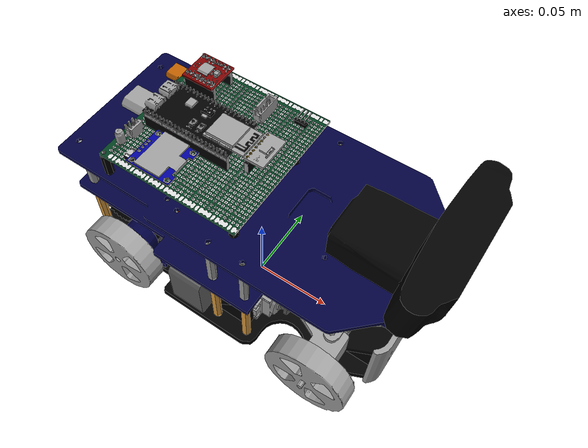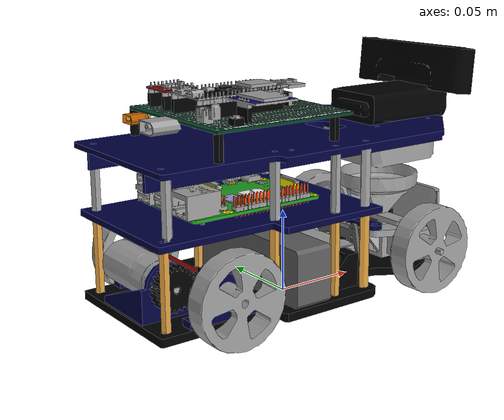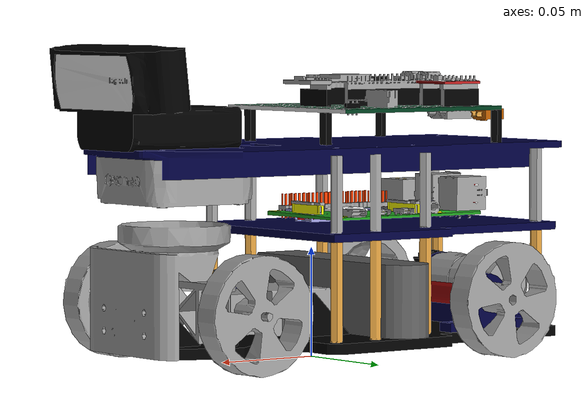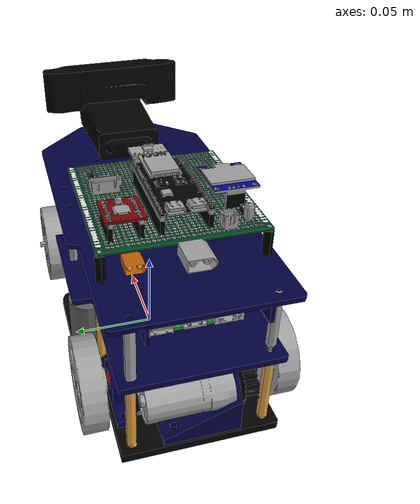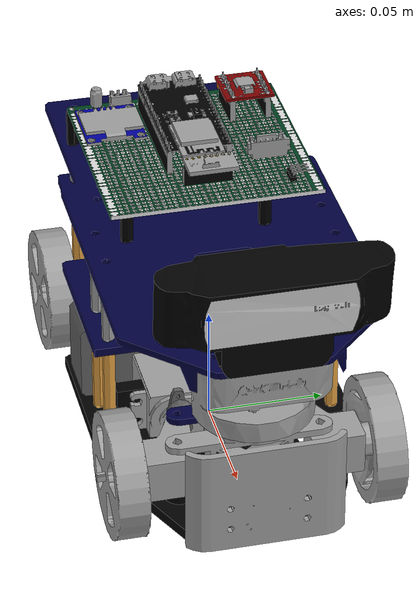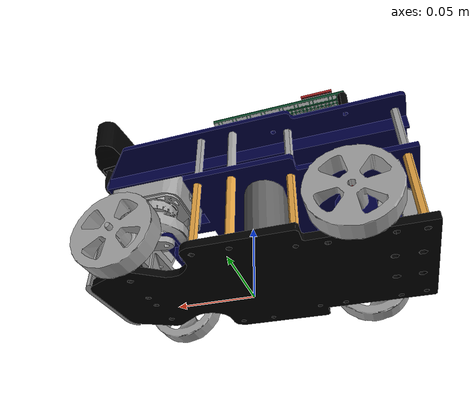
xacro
<?xml version="1.0"?>
<robot xmlns:xacro="http://www.ros.org/wiki/xacro" name="goruBot">

    <xacro:include filename="cad_generated.xacro" />

    <xacro:property name="steer_stop_inner" value="${radians(39.0)}" />
    <xacro:property name="steer_stop_outer" value="${radians(31.0)}" />

    <xacro:property name="camera_pitch" value="0.0" />

    <!-- control.xacro first: it holds the motor's friction, which the axle joint uses. -->
    <xacro:include filename="control.xacro" />
    <xacro:include filename="goruBotCore.xacro" />
    <xacro:include filename="lidar.xacro" />
    <xacro:include filename="IMU.xacro" />
    <xacro:include filename="camera.xacro" />
    <xacro:include filename="gazebo.xacro" />

</robot>

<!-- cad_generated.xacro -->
<!-- GENERATED by gorusim/tools/extract_cad.py from CAD/WRO_Bot_v2.step.
     Do not edit by hand: re-run the tool. -->
<robot xmlns:xacro="http://www.ros.org/wiki/xacro" name="goruBot">
    <xacro:property name="wheel_radius" value="0.0265" />
    <xacro:property name="rear_wheel_radius" value="0.0265" />
    <xacro:property name="front_tread" value="0.012" />
    <xacro:property name="rear_tread" value="0.012" />
    <xacro:property name="rear_wheel_offset" value="0.0535" />
    <xacro:property name="base_link_xyz" value="0 0 0" />
    <xacro:property name="rear_axle_xyz" value="-0.07 0 0.0265" />
    <xacro:property name="front_left_knuckle_xyz" value="0.07 0.029747 0.0265" />
    <xacro:property name="front_right_knuckle_xyz" value="0.07 -0.029747 0.0265" />
    <xacro:property name="front_left_wheel_xyz" value="0.07 0.0535 0.0265" />
    <xacro:property name="front_right_wheel_xyz" value="0.07 -0.0535 0.0265" />
    <xacro:property name="laser_xyz" value="0.076013 0 0.06825" />
    <xacro:property name="camera_link_xyz" value="0.119915 -0.000034 0.127429" />
    <xacro:property name="imu_link_xyz" value="0.00225 0.000124 0.126525" />
    <xacro:property name="front_left_wheel_joint_xyz" value="0 0.023753 0" />
    <xacro:property name="front_right_wheel_joint_xyz" value="0 -0.023753 0" />
    <xacro:property name="lidar_radius" value="0.0278" />
    <xacro:property name="lidar_body_length" value="0.0413" />
    <xacro:property name="lidar_body_center_z" value="0.0049" />
    <xacro:property name="camera_box_size" value="0.026173 0.094083 0.029496" />
    <xacro:property name="camera_box_xyz" value="-0.012452 0.000064 0.001045" />
    <xacro:macro name="base_link_cad">
        <visual>
            <geometry>
                <mesh filename="package://gorusim/meshes/base_link__000.stl" />
            </geometry>
            <material name="cad_base_link__000">
                <color rgba="0 0 0 1" />
            </material>
        </visual>
        <visual>
            <geometry>
                <mesh filename="package://gorusim/meshes/base_link__002.stl" />
            </geometry>
            <material name="cad_base_link__002">
                <color rgba="0 0 0.25 1" />
            </material>
        </visual>
        <visual>
            <geometry>
                <mesh filename="package://gorusim/meshes/base_link__005.stl" />
            </geometry>
            <material name="cad_base_link__005">
                <color rgba="0 0 0.625 1" />
            </material>
        </visual>
        <visual>
            <geometry>
                <mesh filename="package://gorusim/meshes/base_link__021.stl" />
            </geometry>
            <material name="cad_base_link__021">
                <color rgba="0 0.25 0.125 1" />
            </material>
        </visual>
        <visual>
            <geometry>
                <mesh filename="package://gorusim/meshes/base_link__024.stl" />
            </geometry>
            <material name="cad_base_link__024">
                <color rgba="0 0.25 0.5 1" />
            </material>
        </visual>
        <visual>
            <geometry>
                <mesh filename="package://gorusim/meshes/base_link__111.stl" />
            </geometry>
            <material name="cad_base_link__111">
                <color rgba="0.125 0.125 0.125 1" />
            </material>
        </visual>
        <visual>
            <geometry>
                <mesh filename="package://gorusim/meshes/base_link__151.stl" />
            </geometry>
            <material name="cad_base_link__151">
                <color rgba="0.125 0.625 0.125 1" />
            </material>
        </visual>
        <visual>
            <geometry>
                <mesh filename="package://gorusim/meshes/base_link__211.stl" />
            </geometry>
            <material name="cad_base_link__211">
                <color rgba="0.25 0.125 0.125 1" />
            </material>
        </visual>
        <visual>
            <geometry>
                <mesh filename="package://gorusim/meshes/base_link__222.stl" />
            </geometry>
            <material name="cad_base_link__222">
                <color rgba="0.25 0.25 0.25 1" />
            </material>
        </visual>
        <visual>
            <geometry>
                <mesh filename="package://gorusim/meshes/base_link__333.stl" />
            </geometry>
            <material name="cad_base_link__333">
                <color rgba="0.375 0.375 0.375 1" />
            </material>
        </visual>
        <visual>
            <geometry>
                <mesh filename="package://gorusim/meshes/base_link__400.stl" />
            </geometry>
            <material name="cad_base_link__400">
                <color rgba="0.5 0 0 1" />
            </material>
        </visual>
        <visual>
            <geometry>
                <mesh filename="package://gorusim/meshes/base_link__444.stl" />
            </geometry>
            <material name="cad_base_link__444">
                <color rgba="0.5 0.5 0.5 1" />
            </material>
        </visual>
        <visual>
            <geometry>
                <mesh filename="package://gorusim/meshes/base_link__555.stl" />
            </geometry>
            <material name="cad_base_link__555">
                <color rgba="0.625 0.625 0.625 1" />
            </material>
        </visual>
        <visual>
            <geometry>
                <mesh filename="package://gorusim/meshes/base_link__557.stl" />
            </geometry>
            <material name="cad_base_link__557">
                <color rgba="0.625 0.625 0.875 1" />
            </material>
        </visual>
        <visual>
            <geometry>
                <mesh filename="package://gorusim/meshes/base_link__611.stl" />
            </geometry>
            <material name="cad_base_link__611">
                <color rgba="0.75 0.125 0.125 1" />
            </material>
        </visual>
        <visual>
            <geometry>
                <mesh filename="package://gorusim/meshes/base_link__630.stl" />
            </geometry>
            <material name="cad_base_link__630">
                <color rgba="0.75 0.375 0 1" />
            </material>
        </visual>
        <visual>
            <geometry>
                <mesh filename="package://gorusim/meshes/base_link__666.stl" />
            </geometry>
            <material name="cad_base_link__666">
                <color rgba="0.75 0.75 0.75 1" />
            </material>
        </visual>
        <visual>
            <geometry>
                <mesh filename="package://gorusim/meshes/base_link__700.stl" />
            </geometry>
            <material name="cad_base_link__700">
                <color rgba="0.875 0 0 1" />
            </material>
        </visual>
        <visual>
            <geometry>
                <mesh filename="package://gorusim/meshes/base_link__752.stl" />
            </geometry>
            <material name="cad_base_link__752">
                <color rgba="0.875 0.625 0.25 1" />
            </material>
        </visual>
        <visual>
            <geometry>
                <mesh filename="package://gorusim/meshes/base_link__763.stl" />
            </geometry>
            <material name="cad_base_link__763">
                <color rgba="0.875 0.75 0.375 1" />
            </material>
        </visual>
        <visual>
            <geometry>
                <mesh filename="package://gorusim/meshes/base_link__777.stl" />
            </geometry>
            <material name="cad_base_link__777">
                <color rgba="0.875 0.875 0.875 1" />
            </material>
        </visual>
        <visual>
            <geometry>
                <mesh filename="package://gorusim/meshes/base_link__800.stl" />
            </geometry>
            <material name="cad_base_link__800">
                <color rgba="1 0 0 1" />
            </material>
        </visual>
        <visual>
            <geometry>
                <mesh filename="package://gorusim/meshes/base_link__820.stl" />
            </geometry>
            <material name="cad_base_link__820">
                <color rgba="1 0.25 0 1" />
            </material>
        </visual>
        <visual>
            <geometry>
                <mesh filename="package://gorusim/meshes/base_link__880.stl" />
            </geometry>
            <material name="cad_base_link__880">
                <color rgba="1 1 0 1" />
            </material>
        </visual>
        <visual>
            <geometry>
                <mesh filename="package://gorusim/meshes/base_link__888.stl" />
            </geometry>
            <material name="cad_base_link__888">
                <color rgba="1 1 1 1" />
            </material>
        </visual>
        <inertial>
            <origin xyz="-0.025829 -0.000917 0.044631" />
            <mass value="0.796792" />
            <inertia ixx="1.462060e-03" ixy="4.466321e-05" ixz="2.322719e-05" iyy="2.776908e-03" iyz="-1.021151e-05" izz="2.650289e-03" />
        </inertial>
    </xacro:macro>
    <xacro:macro name="rear_axle_cad">
        <visual>
            <geometry>
                <mesh filename="package://gorusim/meshes/rear_axle__000.stl" />
            </geometry>
            <material name="cad_rear_axle__000">
                <color rgba="0 0 0 1" />
            </material>
        </visual>
        <visual>
            <geometry>
                <mesh filename="package://gorusim/meshes/rear_axle__400.stl" />
            </geometry>
            <material name="cad_rear_axle__400">
                <color rgba="0.5 0 0 1" />
            </material>
        </visual>
        <visual>
            <geometry>
                <mesh filename="package://gorusim/meshes/rear_axle__555.stl" />
            </geometry>
            <material name="cad_rear_axle__555">
                <color rgba="0.625 0.625 0.625 1" />
            </material>
        </visual>
        <inertial>
            <origin xyz="-0 0.000165 0" />
            <mass value="0.08217" />
            <inertia ixx="1.550877e-04" ixy="-4.077883e-12" ixz="-6.324603e-13" iyy="1.126836e-04" iyz="-2.323920e-12" izz="1.551082e-04" />
        </inertial>
    </xacro:macro>
    <xacro:macro name="front_left_knuckle_cad">
        <visual>
            <geometry>
                <mesh filename="package://gorusim/meshes/front_left_knuckle__555.stl" />
            </geometry>
            <material name="cad_front_left_knuckle__555">
                <color rgba="0.625 0.625 0.625 1" />
            </material>
        </visual>
        <visual>
            <geometry>
                <mesh filename="package://gorusim/meshes/front_left_knuckle__666.stl" />
            </geometry>
            <material name="cad_front_left_knuckle__666">
                <color rgba="0.75 0.75 0.75 1" />
            </material>
        </visual>
        <inertial>
            <origin xyz="-0.000918 0.00832 0.000474" />
            <mass value="0.010712" />
            <inertia ixx="8.446107e-07" ixy="-1.100378e-07" ixz="6.439038e-08" iyy="6.613982e-07" iyz="5.687453e-08" izz="9.637197e-07" />
        </inertial>
    </xacro:macro>
    <xacro:macro name="front_right_knuckle_cad">
        <visual>
            <geometry>
                <mesh filename="package://gorusim/meshes/front_right_knuckle__555.stl" />
            </geometry>
            <material name="cad_front_right_knuckle__555">
                <color rgba="0.625 0.625 0.625 1" />
            </material>
        </visual>
        <visual>
            <geometry>
                <mesh filename="package://gorusim/meshes/front_right_knuckle__666.stl" />
            </geometry>
            <material name="cad_front_right_knuckle__666">
                <color rgba="0.75 0.75 0.75 1" />
            </material>
        </visual>
        <inertial>
            <origin xyz="-0.000949 -0.008528 0.00049" />
            <mass value="0.01036" />
            <inertia ixx="8.223531e-07" ixy="1.120836e-07" ixz="6.423200e-08" iyy="6.554374e-07" iyz="-5.793101e-08" izz="9.409222e-07" />
        </inertial>
    </xacro:macro>
    <xacro:macro name="front_left_wheel_cad">
        <visual>
            <geometry>
                <mesh filename="package://gorusim/meshes/front_left_wheel__555.stl" />
            </geometry>
            <material name="cad_front_left_wheel__555">
                <color rgba="0.625 0.625 0.625 1" />
            </material>
        </visual>
        <inertial>
            <origin xyz="0 0.000589 0" />
            <mass value="0.019586" />
            <inertia ixx="4.440116e-06" ixy="4.848212e-16" ixz="-1.621630e-16" iyy="8.362235e-06" iyz="-1.255838e-15" izz="4.440116e-06" />
        </inertial>
    </xacro:macro>
    <xacro:macro name="front_right_wheel_cad">
        <visual>
            <geometry>
                <mesh filename="package://gorusim/meshes/front_right_wheel__555.stl" />
            </geometry>
            <material name="cad_front_right_wheel__555">
                <color rgba="0.625 0.625 0.625 1" />
            </material>
        </visual>
        <inertial>
            <origin xyz="0 -0.000589 0" />
            <mass value="0.019586" />
            <inertia ixx="4.440116e-06" ixy="-4.847392e-16" ixz="-1.621671e-16" iyy="8.362235e-06" iyz="1.255850e-15" izz="4.440116e-06" />
        </inertial>
    </xacro:macro>
    <xacro:macro name="laser_cad">
        <visual>
            <geometry>
                <mesh filename="package://gorusim/meshes/laser__334.stl" />
            </geometry>
            <material name="cad_laser__334">
                <color rgba="0.375 0.375 0.5 1" />
            </material>
        </visual>
        <visual>
            <geometry>
                <mesh filename="package://gorusim/meshes/laser__555.stl" />
            </geometry>
            <material name="cad_laser__555">
                <color rgba="0.625 0.625 0.625 1" />
            </material>
        </visual>
        <inertial>
            <origin xyz="0.000082 0.000095 0.011555" />
            <mass value="0.11" />
            <inertia ixx="4.817472e-05" ixy="6.971116e-09" ixz="-7.497358e-08" iyy="4.802555e-05" iyz="-5.650924e-08" izz="6.794310e-05" />
        </inertial>
    </xacro:macro>
    <xacro:macro name="camera_link_cad">
        <visual>
            <geometry>
                <mesh filename="package://gorusim/meshes/camera_link__000.stl" />
            </geometry>
            <material name="cad_camera_link__000">
                <color rgba="0 0 0 1" />
            </material>
        </visual>
        <visual>
            <geometry>
                <mesh filename="package://gorusim/meshes/camera_link__333.stl" />
            </geometry>
            <material name="cad_camera_link__333">
                <color rgba="0.375 0.375 0.375 1" />
            </material>
        </visual>
        <visual>
            <geometry>
                <mesh filename="package://gorusim/meshes/camera_link__444.stl" />
            </geometry>
            <material name="cad_camera_link__444">
                <color rgba="0.5 0.5 0.5 1" />
            </material>
        </visual>
        <visual>
            <geometry>
                <mesh filename="package://gorusim/meshes/camera_link__777.stl" />
            </geometry>
            <material name="cad_camera_link__777">
                <color rgba="0.875 0.875 0.875 1" />
            </material>
        </visual>
        <inertial>
            <origin xyz="-0.024503 0.000049 -0.008835" />
            <mass value="0.162" />
            <inertia ixx="9.345157e-05" ixy="-3.526956e-08" ixz="-2.180396e-05" iyy="7.730485e-05" iyz="1.823723e-07" izz="1.163682e-04" />
        </inertial>
    </xacro:macro>
    <xacro:macro name="imu_link_cad">
        <visual>
            <geometry>
                <mesh filename="package://gorusim/meshes/imu_link__222.stl" />
            </geometry>
            <material name="cad_imu_link__222">
                <color rgba="0.25 0.25 0.25 1" />
            </material>
        </visual>
        <visual>
            <geometry>
                <mesh filename="package://gorusim/meshes/imu_link__444.stl" />
            </geometry>
            <material name="cad_imu_link__444">
                <color rgba="0.5 0.5 0.5 1" />
            </material>
        </visual>
        <visual>
            <geometry>
                <mesh filename="package://gorusim/meshes/imu_link__541.stl" />
            </geometry>
            <material name="cad_imu_link__541">
                <color rgba="0.625 0.5 0.125 1" />
            </material>
        </visual>
        <visual>
            <geometry>
                <mesh filename="package://gorusim/meshes/imu_link__555.stl" />
            </geometry>
            <material name="cad_imu_link__555">
                <color rgba="0.625 0.625 0.625 1" />
            </material>
        </visual>
        <visual>
            <geometry>
                <mesh filename="package://gorusim/meshes/imu_link__888.stl" />
            </geometry>
            <material name="cad_imu_link__888">
                <color rgba="1 1 1 1" />
            </material>
        </visual>
        <inertial>
            <origin xyz="0.000257 0.000083 -0.000468" />
            <mass value="0.000747" />
            <inertia ixx="2.608301e-08" ixy="8.202680e-11" ixz="-1.117803e-10" iyy="8.539946e-09" iyz="-8.365215e-11" izz="3.397854e-08" />
        </inertial>
    </xacro:macro>
</robot>

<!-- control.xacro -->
<robot xmlns:xacro="http://www.ros.org/wiki/xacro" name="goruBot">

    <xacro:property name="motor_stall_torque" value="0.20" />
    <xacro:property name="motor_no_load_speed" value="98.3" />
    <xacro:property name="axle_friction" value="0.03" />
    <xacro:property name="axle_damping" value="0.00002" />

    <gazebo>
        <plugin filename="ignition-gazebo-joint-controller-system"
                name="ignition::gazebo::systems::JointController">
            <joint_name>rear_axle_joint</joint_name>
            <topic>/gorubot/motor_target</topic>
            <use_force_commands>true</use_force_commands>
            <p_gain>${motor_stall_torque / motor_no_load_speed}</p_gain>
            <i_gain>0.0</i_gain>
            <d_gain>0.0</d_gain>
            <cmd_max>${motor_stall_torque}</cmd_max>
            <cmd_min>${-motor_stall_torque}</cmd_min>
        </plugin>
    </gazebo>

    <xacro:macro name="steer_controller" params="joint topic">
        <gazebo>
            <plugin filename="ignition-gazebo-joint-position-controller-system"
                    name="ignition::gazebo::systems::JointPositionController">
                <joint_name>${joint}</joint_name>
                <topic>${topic}</topic>
                <p_gain>6.0</p_gain>
                <i_gain>3.0</i_gain>
                <d_gain>0.02</d_gain>
                <i_max>0.5</i_max>
                <i_min>-0.5</i_min>
                <cmd_max>1.0</cmd_max>
                <cmd_min>-1.0</cmd_min>
            </plugin>
        </gazebo>
    </xacro:macro>

    <xacro:steer_controller joint="front_left_kingpin" topic="/gorubot/steer_left" />
    <xacro:steer_controller joint="front_right_kingpin" topic="/gorubot/steer_right" />

    <gazebo>
        <plugin filename="ignition-gazebo-joint-state-publisher-system"
                name="ignition::gazebo::systems::JointStatePublisher">
            <topic>/gorubot/joint_states</topic>
            <joint_name>rear_axle_joint</joint_name>
            <joint_name>front_left_kingpin</joint_name>
            <joint_name>front_right_kingpin</joint_name>
            <joint_name>front_left_wheel_joint</joint_name>
            <joint_name>front_right_wheel_joint</joint_name>
        </plugin>
    </gazebo>

    <gazebo>
        <plugin filename="ignition-gazebo-odometry-publisher-system"
                name="ignition::gazebo::systems::OdometryPublisher">
            <odom_frame>odom</odom_frame>
            <robot_base_frame>base_link</robot_base_frame>
            <odom_topic>/gorubot/ground_truth</odom_topic>
            <tf_topic>/gorubot/ground_truth_tf</tf_topic>
            <odom_publish_frequency>50</odom_publish_frequency>
            <dimensions>2</dimensions>
        </plugin>
    </gazebo>

</robot>

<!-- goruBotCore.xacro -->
<robot xmlns:xacro="http://www.ros.org/wiki/xacro" name="goruBot">

    <xacro:macro name="box_collision" params="xmin xmax half_y zmin zmax">
        <collision>
            <origin xyz="${(xmin + xmax) / 2.0} 0 ${(zmin + zmax) / 2.0}" />
            <geometry>
                <box size="${xmax - xmin} ${2.0 * half_y} ${zmax - zmin}" />
            </geometry>
        </collision>
    </xacro:macro>

    <xacro:macro name="tyre_collision" params="y length">
        <collision>
            <origin xyz="0 ${y} 0" rpy="${-pi / 2.0} 0 0" />
            <geometry>
                <cylinder radius="${wheel_radius}" length="${length}" />
            </geometry>
        </collision>
    </xacro:macro>

    <!-- ══ Chassis ══════════════════════════════════════════════════ -->
    <link name="base_link">
        <xacro:base_link_cad />

        <!-- Base plate, z 6.5..11.5 mm. Waisted around the front wheels and
             narrower behind the rear ones, in three convex pieces. -->
        <xacro:box_collision xmin="-0.110" xmax="-0.038" half_y="0.044" zmin="0.0065" zmax="0.0115" />
        <xacro:box_collision xmin="-0.038" xmax="0.029" half_y="0.055" zmin="0.0065" zmax="0.0115" />
        <xacro:box_collision xmin="0.029" xmax="0.100" half_y="0.038" zmin="0.0065" zmax="0.0115" />
        <!-- Team-name bumper, the lowest thing at the very front. -->
        <xacro:box_collision xmin="0.096" xmax="0.103" half_y="0.0331" zmin="0.0065" zmax="0.0525" />
        <!-- LiPo, wider than the plate's rear section and sitting proud of it. -->
        <xacro:box_collision xmin="-0.031" xmax="-0.008" half_y="0.055" zmin="0.0115" zmax="0.0445" />
        <!-- Second deck, z 56.5..60 mm. -->
        <xacro:box_collision xmin="-0.110" xmax="-0.038" half_y="0.044" zmin="0.0565" zmax="0.060" />
        <xacro:box_collision xmin="-0.038" xmax="0.029" half_y="0.055" zmin="0.0565" zmax="0.060" />
        <!-- Third deck, z 95..98 mm, pointed at the nose. -->
        <xacro:box_collision xmin="-0.110" xmax="-0.035" half_y="0.0485" zmin="0.095" zmax="0.098" />
        <xacro:box_collision xmin="-0.035" xmax="0.070" half_y="0.055" zmin="0.095" zmax="0.098" />
        <xacro:box_collision xmin="0.070" xmax="0.109" half_y="0.035" zmin="0.095" zmax="0.098" />
    </link>

    <!-- ══ Rear axle (driven, solid) ═════════════════════════════════
         Damping and friction come from control.xacro's motor block. -->
    <joint name="rear_axle_joint" type="continuous">
        <parent link="base_link" />
        <child link="rear_axle" />
        <origin xyz="${rear_axle_xyz}" />
        <axis xyz="0 1 0" />
        <dynamics damping="${axle_damping}" friction="${axle_friction}" />
    </joint>
    <link name="rear_axle">
        <xacro:rear_axle_cad />
        <xacro:tyre_collision y="${rear_wheel_offset}" length="${rear_tread}" />
        <xacro:tyre_collision y="${-rear_wheel_offset}" length="${rear_tread}" />
    </link>

    <!-- ══ Front axle (steered, free rolling on 624ZZ bearings) ═════ -->
    <xacro:macro name="front_corner" params="side lower upper knuckle_xyz wheel_xyz">
        <joint name="front_${side}_kingpin" type="revolute">
            <parent link="base_link" />
            <child link="front_${side}_knuckle" />
            <origin xyz="${knuckle_xyz}" />
            <axis xyz="0 0 1" />
            <limit lower="${lower}" upper="${upper}" effort="10" velocity="12" />
            <dynamics damping="0.002" friction="0.002" />
        </joint>
        <link name="front_${side}_knuckle">
            <xacro:call macro="front_${side}_knuckle_cad" />
        </link>
        <joint name="front_${side}_wheel_joint" type="continuous">
            <parent link="front_${side}_knuckle" />
            <child link="front_${side}_wheel" />
            <origin xyz="${wheel_xyz}" />
            <axis xyz="0 1 0" />
            <dynamics damping="0.00002" friction="0.0002" />
        </joint>
        <link name="front_${side}_wheel">
            <xacro:call macro="front_${side}_wheel_cad" />
            <xacro:tyre_collision y="0" length="${front_tread}" />
        </link>
    </xacro:macro>

    <!-- The inner wheel of a turn is the one that gets furthest. -->
    <xacro:front_corner side="left" lower="${-steer_stop_outer}" upper="${steer_stop_inner}"
                        knuckle_xyz="${front_left_knuckle_xyz}"
                        wheel_xyz="${front_left_wheel_joint_xyz}" />
    <xacro:front_corner side="right" lower="${-steer_stop_inner}" upper="${steer_stop_outer}"
                        knuckle_xyz="${front_right_knuckle_xyz}"
                        wheel_xyz="${front_right_wheel_joint_xyz}" />

</robot>

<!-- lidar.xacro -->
<robot xmlns:xacro="http://www.ros.org/wiki/xacro" name="goruBot">

    <joint name="base_to_laser" type="fixed">
        <parent link="base_link" />
        <child link="laser" />
        <origin xyz="${laser_xyz}" />
    </joint>

    <link name="laser">
        <xacro:laser_cad />
        <collision>
            <origin xyz="0 0 ${lidar_body_center_z}" />
            <geometry>
                <cylinder radius="${lidar_radius}" length="${lidar_body_length}" />
            </geometry>
        </collision>
    </link>

    <gazebo reference="laser">
        <!-- Keep `laser` a real link in the converted SDF, so the sensor frame and
             the TF frame carry the same name. -->
        <disableFixedJointLumping>true</disableFixedJointLumping>

        <sensor name="lidar" type="gpu_lidar">
            <topic>scan</topic>
            <ignition_frame_id>laser</ignition_frame_id>
            <update_rate>10</update_rate>
            <always_on>1</always_on>
            <visualize>true</visualize>
            <lidar>
                <scan>
                    <horizontal>
                        <samples>720</samples>
                        <resolution>1</resolution>
                        <min_angle>${radians(-179.0)}</min_angle>
                        <max_angle>${pi}</max_angle>
                    </horizontal>
                    <vertical>
                        <samples>1</samples>
                        <resolution>1</resolution>
                        <min_angle>0</min_angle>
                        <max_angle>0</max_angle>
                    </vertical>
                </scan>
                <range>
                    <min>0.05</min>
                    <max>12.0</max>
                    <resolution>0.015</resolution>
                </range>
                <noise>
                    <type>gaussian</type>
                    <mean>0.0</mean>
                    <stddev>0.01</stddev>
                </noise>
            </lidar>
        </sensor>
    </gazebo>
</robot>

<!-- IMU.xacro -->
<robot xmlns:xacro="http://www.ros.org/wiki/xacro" name="goruBot">

    <joint name="base_to_imu" type="fixed">
        <parent link="base_link" />
        <child link="imu_link" />
        <origin xyz="${imu_link_xyz}" />
    </joint>

    <link name="imu_link">
        <xacro:imu_link_cad />
    </link>

    <gazebo reference="imu_link">
        <disableFixedJointLumping>true</disableFixedJointLumping>

        <sensor name="imu" type="imu">
            <topic>imu</topic>
            <ignition_frame_id>imu_link</ignition_frame_id>
            <update_rate>100</update_rate>
            <always_on>1</always_on>
            <visualize>false</visualize>
            <imu>
                <!-- Small on purpose: the BNO055 runs Bosch's own fusion and reports
                     a stable yaw. -->
                <angular_velocity>
                    <x><noise type="gaussian"><mean>0.0</mean><stddev>0.001</stddev></noise></x>
                    <y><noise type="gaussian"><mean>0.0</mean><stddev>0.001</stddev></noise></y>
                    <z><noise type="gaussian"><mean>0.0</mean><stddev>0.001</stddev></noise></z>
                </angular_velocity>
                <linear_acceleration>
                    <x><noise type="gaussian"><mean>0.0</mean><stddev>0.01</stddev></noise></x>
                    <y><noise type="gaussian"><mean>0.0</mean><stddev>0.01</stddev></noise></y>
                    <z><noise type="gaussian"><mean>0.0</mean><stddev>0.01</stddev></noise></z>
                </linear_acceleration>
            </imu>
        </sensor>
    </gazebo>
</robot>

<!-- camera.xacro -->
<robot xmlns:xacro="http://www.ros.org/wiki/xacro" name="goruBot">

    <joint name="camera_joint" type="fixed">
        <parent link="base_link" />
        <child link="camera_link" />
        <origin xyz="${camera_link_xyz}" rpy="0 ${camera_pitch} 0" />
    </joint>

    <link name="camera_link">
        <xacro:camera_link_cad />
        <collision>
            <origin xyz="${camera_box_xyz}" />
            <geometry>
                <box size="${camera_box_size}" />
            </geometry>
        </collision>
    </link>

    <joint name="camera_optical_joint" type="fixed">
        <parent link="camera_link" />
        <child link="camera_link_optical" />
        <origin xyz="0 0 0" rpy="${-pi/2} 0 ${-pi/2}" />
    </joint>

    <link name="camera_link_optical" />

    <gazebo reference="camera_link">
        <disableFixedJointLumping>true</disableFixedJointLumping>

        <sensor name="camera" type="camera">
            <!-- Sits just ahead of the glass so the housing is not in frame. -->
            <pose>0.002 0 0 0 0 0</pose>
            <topic>camera/image_raw</topic>
            <ignition_frame_id>camera_link_optical</ignition_frame_id>
            <update_rate>30</update_rate>
            <always_on>1</always_on>
            <visualize>false</visualize>
            <camera>
                <horizontal_fov>${radians(60.0)}</horizontal_fov>
                <image>
                    <width>640</width>
                    <height>480</height>
                    <format>R8G8B8</format>
                </image>
                <clip>
                    <near>0.02</near>
                    <far>10.0</far>
                </clip>
                <noise>
                    <type>gaussian</type>
                    <mean>0.0</mean>
                    <stddev>0.005</stddev>
                </noise>
            </camera>
        </sensor>
    </gazebo>
</robot>
